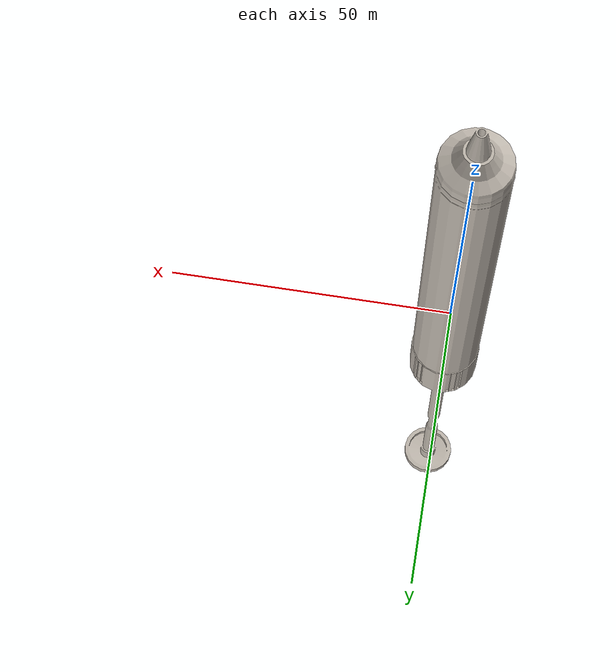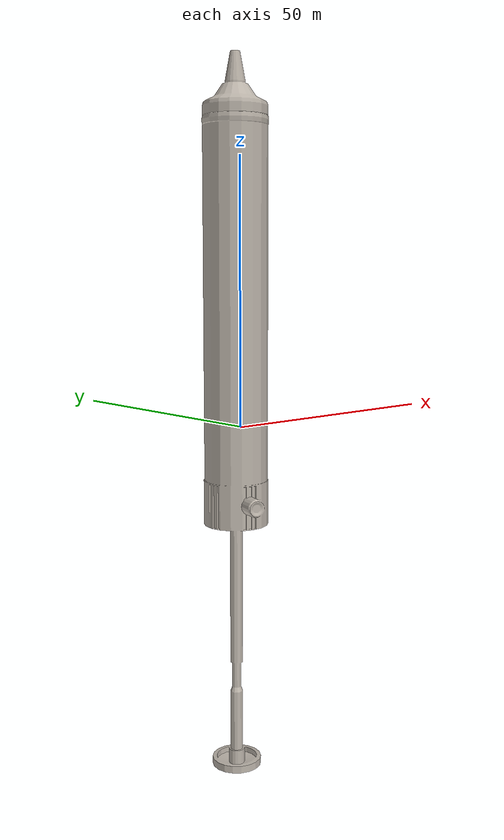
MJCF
<?xml version="1.0" encoding="utf-8"?>
<mujoco model="Solder sucker">
  <default>
    <default class="visual">
      <geom group="2" type="mesh" contype="0" conaffinity="0"/>
    </default>
    <default class="collision">
      <geom group="3" type="mesh"/>
    </default>
  </default>
  <asset>
    <texture type="2d" name="Solder sucker_BaseColor" file="Solder sucker/Solder sucker_BaseColor.png"/>
    <material name="material_0" texture="Solder sucker_BaseColor" specular="1.0" shininess="0.5"/>
    <mesh file="Solder sucker/Solder sucker.obj" name="Solder sucker"/>
    <mesh file="Solder sucker/Solder sucker_collision_0.obj" name="Solder sucker_collision_0"/>
    <mesh file="Solder sucker/Solder sucker_collision_1.obj" name="Solder sucker_collision_1"/>
  </asset>
  <worldbody>
    <body name="Solder sucker">
      <inertial mass="0.1" diaginertia="0.001 0.001 0.001" pos="0 0 0"/>
      <geom material="material_0" mesh="Solder sucker" class="visual"/>
      <geom mesh="Solder sucker_collision_0" rgba="0.652480720635909 0.26649253897118774 0.6503301428587989 1" class="collision"/>
      <geom mesh="Solder sucker_collision_1" rgba="0.8591523355066455 0.7029900950094182 0.7822823318102722 1" class="collision"/>
    </body>
  </worldbody>
</mujoco>
